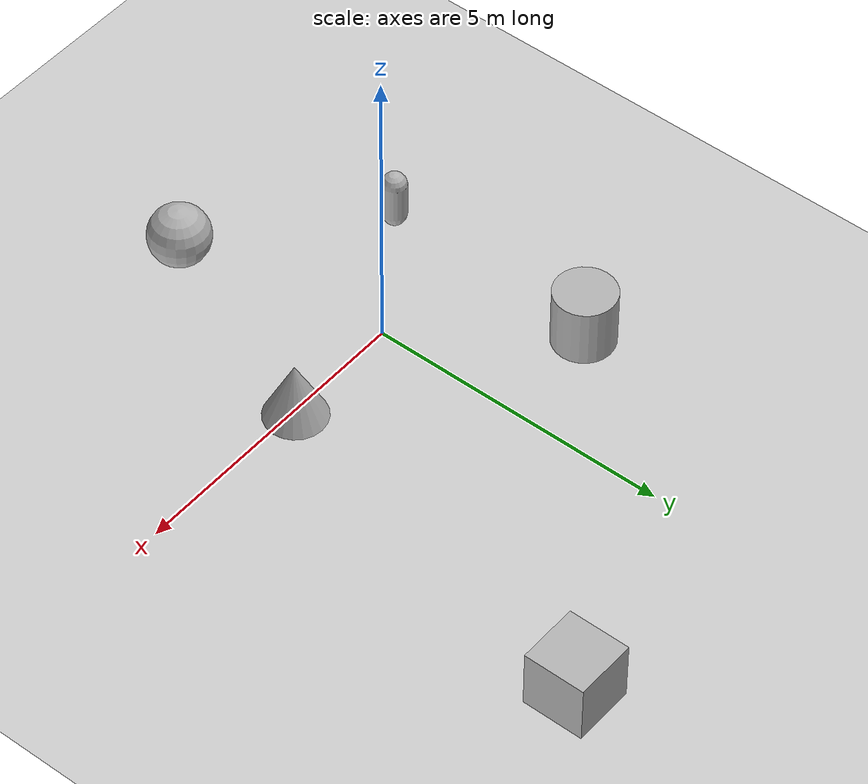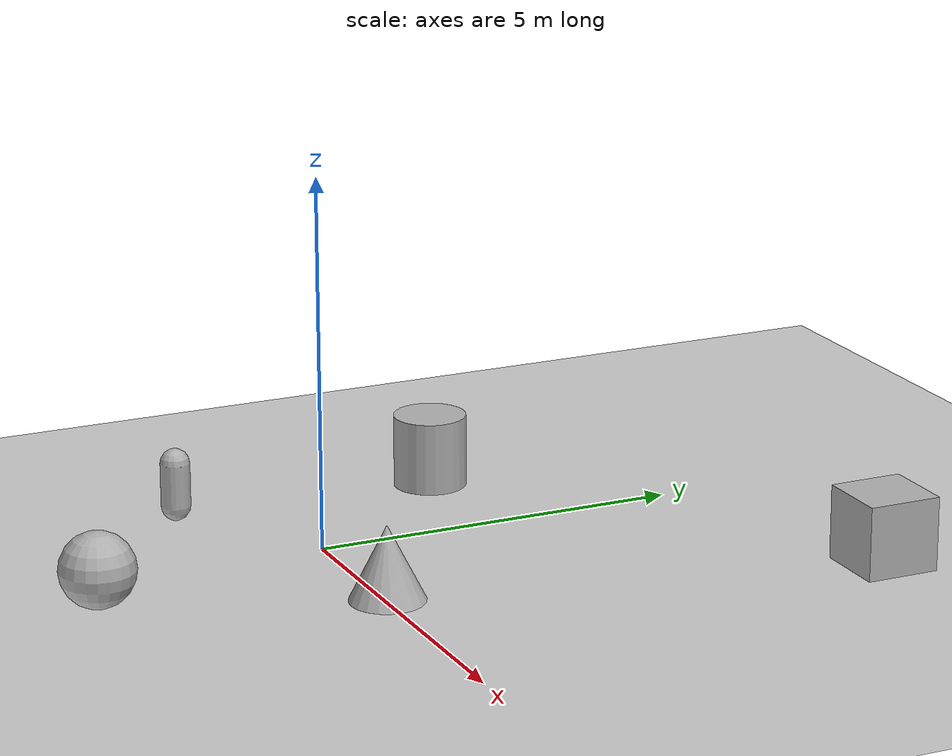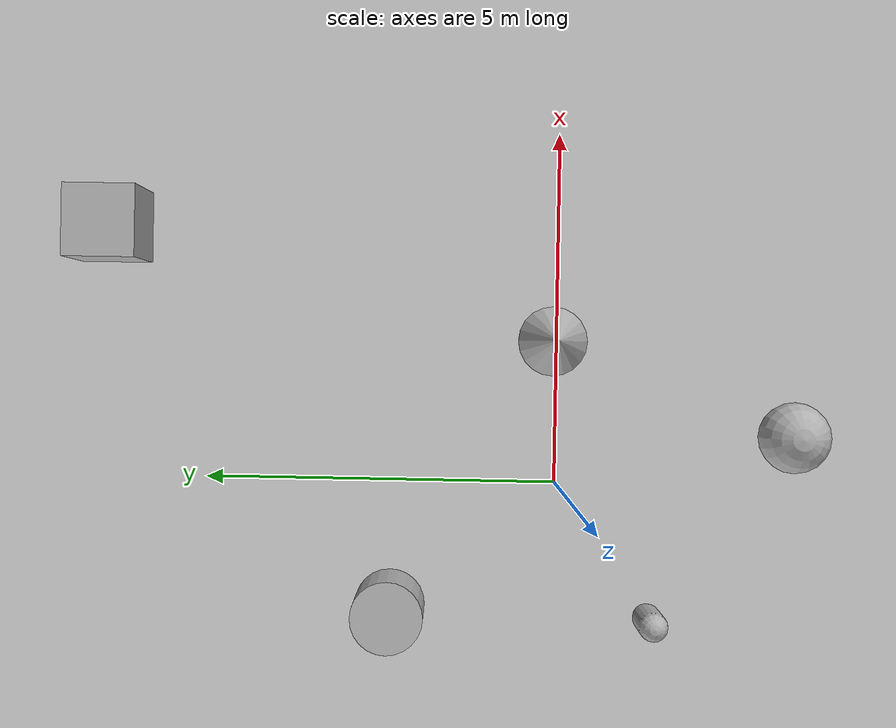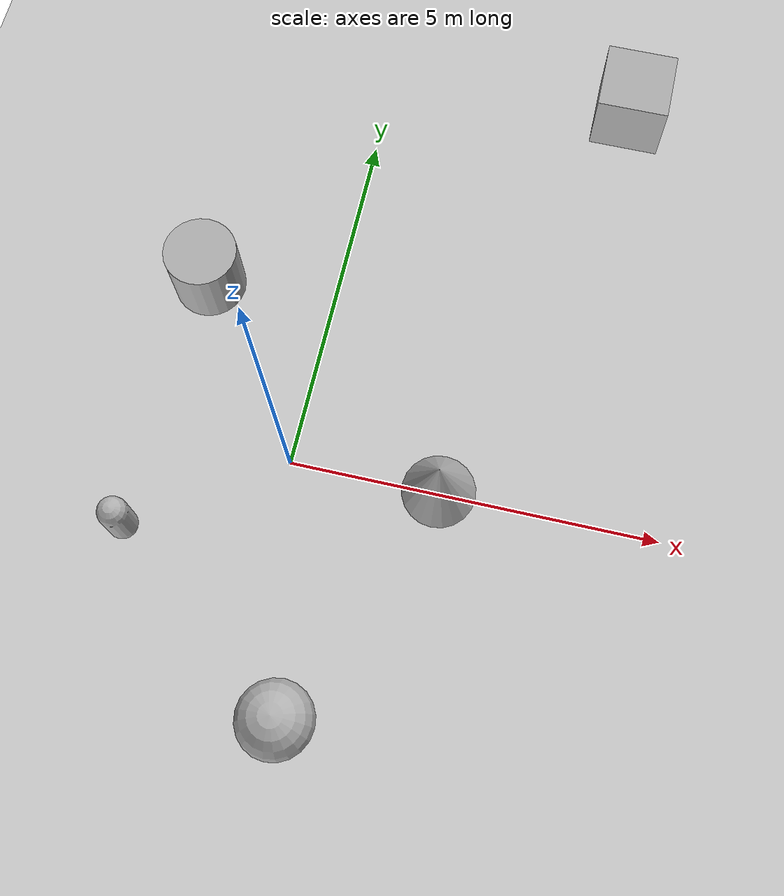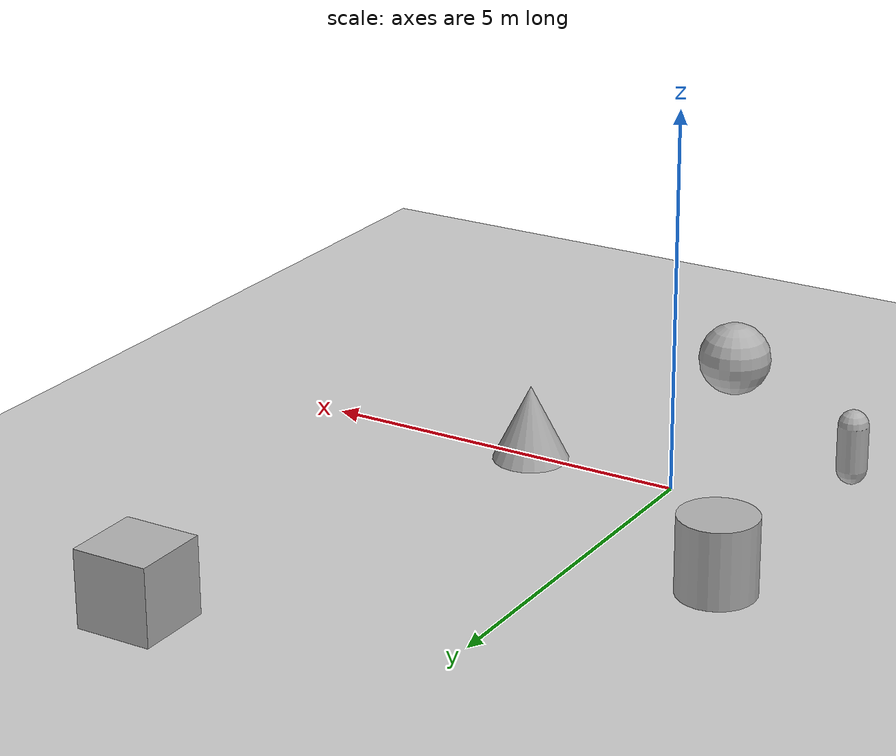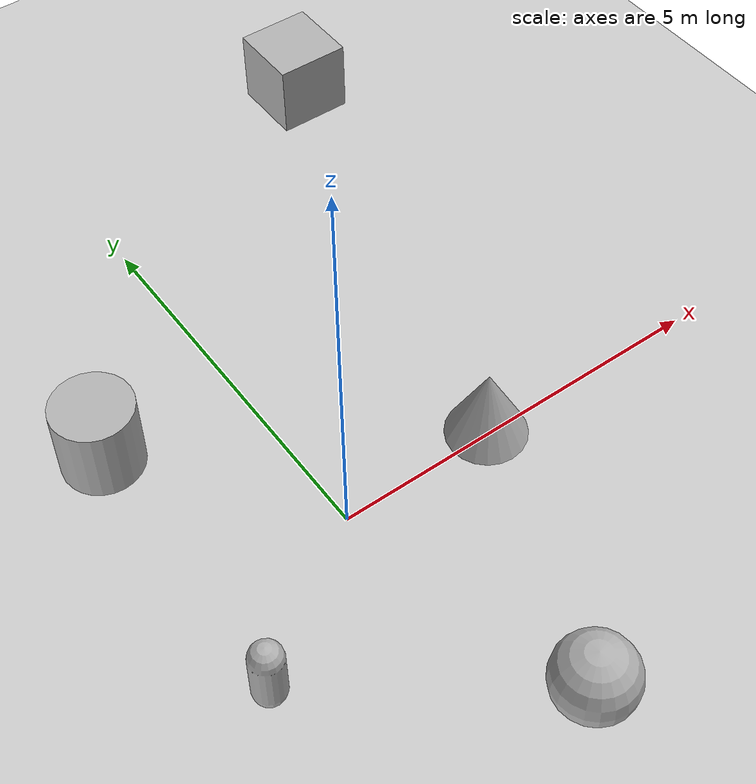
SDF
<sdf version='1.10'>
  <world name='empty'>
    <physics name='1ms' type='ignored'>
      <max_step_size>0.001</max_step_size>
      <real_time_factor>1</real_time_factor>
      <real_time_update_rate>1000</real_time_update_rate>
    </physics>
    <plugin name='gz::sim::systems::Physics' filename='gz-sim-physics-system'/>
    <plugin name='gz::sim::systems::UserCommands' filename='gz-sim-user-commands-system'/>
    <plugin name='gz::sim::systems::SceneBroadcaster' filename='gz-sim-scene-broadcaster-system'/>
    <plugin name='gz::sim::systems::Contact' filename='gz-sim-contact-system'/>
    <gravity>0 0 -9.8000000000000007</gravity>
    <magnetic_field>5.5644999999999998e-06 2.2875799999999999e-05 -4.2388400000000002e-05</magnetic_field>
    <atmosphere type='adiabatic'/>
    <scene>
      <ambient>0.400000006 0.400000006 0.400000006 1</ambient>
      <background>0.699999988 0.699999988 0.699999988 1</background>
      <shadows>true</shadows>
    </scene>
    <model name='ground_plane'>
      <static>true</static>
      <link name='link'>
        <collision name='collision'>
          <geometry>
            <plane>
              <normal>0 0 1</normal>
              <size>100 100</size>
            </plane>
          </geometry>
          <surface>
            <friction>
              <ode/>
            </friction>
            <bounce/>
            <contact/>
          </surface>
        </collision>
        <visual name='visual'>
          <geometry>
            <plane>
              <normal>0 0 1</normal>
              <size>100 100</size>
            </plane>
          </geometry>
          <material>
            <ambient>0.800000012 0.800000012 0.800000012 1</ambient>
            <diffuse>0.800000012 0.800000012 0.800000012 1</diffuse>
            <specular>0.800000012 0.800000012 0.800000012 1</specular>
          </material>
        </visual>
        <pose>0 0 0 0 0 0</pose>
        <inertial>
          <pose>0 0 0 0 0 0</pose>
          <mass>1</mass>
          <inertia>
            <ixx>1</ixx>
            <ixy>0</ixy>
            <ixz>0</ixz>
            <iyy>1</iyy>
            <iyz>0</iyz>
            <izz>1</izz>
          </inertia>
        </inertial>
        <enable_wind>false</enable_wind>
      </link>
      <pose>0 0 0 0 0 0</pose>
      <self_collide>false</self_collide>
    </model>
    <model name='box'>
      <pose>3.5659284803179165 6.3434324295359996 0.49999999990199806 6.2287739151293738e-22 9.3279666454713669e-22 -3.6315533669320137e-22</pose>
      <link name='box_link'>
        <inertial>
          <inertia>
            <ixx>0.16666</ixx>
            <ixy>0</ixy>
            <ixz>0</ixz>
            <iyy>0.16666</iyy>
            <iyz>0</iyz>
            <izz>0.16666</izz>
          </inertia>
          <mass>1</mass>
          <pose>0 0 0 0 0 0</pose>
        </inertial>
        <collision name='box_collision'>
          <geometry>
            <box>
              <size>1 1 1</size>
            </box>
          </geometry>
          <surface>
            <friction>
              <ode/>
            </friction>
            <bounce/>
            <contact/>
          </surface>
        </collision>
        <visual name='box_visual'>
          <geometry>
            <box>
              <size>1 1 1</size>
            </box>
          </geometry>
          <material>
            <ambient>0.300000012 0.300000012 0.300000012 1</ambient>
            <diffuse>0.699999988 0.699999988 0.699999988 1</diffuse>
            <specular>1 1 1 1</specular>
          </material>
        </visual>
        <pose>0 0 0 0 0 0</pose>
        <enable_wind>false</enable_wind>
      </link>
      <static>false</static>
      <self_collide>false</self_collide>
    </model>
    <model name='sphere'>
      <pose>0.72718518636843665 -3.3092808021179825 0.499999999902001 0 0 0</pose>
      <link name='sphere_link'>
        <inertial>
          <inertia>
            <ixx>0.10000000000000001</ixx>
            <ixy>0</ixy>
            <ixz>0</ixz>
            <iyy>0.10000000000000001</iyy>
            <iyz>0</iyz>
            <izz>0.10000000000000001</izz>
          </inertia>
          <mass>1</mass>
          <pose>0 0 0 0 0 0</pose>
        </inertial>
        <collision name='sphere_collision'>
          <geometry>
            <sphere>
              <radius>0.5</radius>
            </sphere>
          </geometry>
          <surface>
            <friction>
              <ode/>
            </friction>
            <bounce/>
            <contact/>
          </surface>
        </collision>
        <visual name='sphere_visual'>
          <geometry>
            <sphere>
              <radius>0.5</radius>
            </sphere>
          </geometry>
          <material>
            <ambient>0.300000012 0.300000012 0.300000012 1</ambient>
            <diffuse>0.699999988 0.699999988 0.699999988 1</diffuse>
            <specular>1 1 1 1</specular>
          </material>
        </visual>
        <pose>0 0 0 0 0 0</pose>
        <enable_wind>false</enable_wind>
      </link>
      <static>false</static>
      <self_collide>false</self_collide>
    </model>
    <model name='cylinder'>
      <pose>-1.7889995467572648 2.3413490768142431 0.49999942638036005 3.8233110674406831e-19 1.782037800581319e-19 -9.0416612472928413e-21</pose>
      <link name='cylinder_link'>
        <inertial>
          <inertia>
            <ixx>0.14580000000000001</ixx>
            <ixy>0</ixy>
            <ixz>0</ixz>
            <iyy>0.14580000000000001</iyy>
            <iyz>0</iyz>
            <izz>0.125</izz>
          </inertia>
          <mass>1</mass>
          <pose>0 0 0 0 0 0</pose>
        </inertial>
        <collision name='cylinder_collision'>
          <geometry>
            <cylinder>
              <radius>0.5</radius>
              <length>1</length>
            </cylinder>
          </geometry>
          <surface>
            <friction>
              <ode/>
            </friction>
            <bounce/>
            <contact/>
          </surface>
        </collision>
        <visual name='cylinder_visual'>
          <geometry>
            <cylinder>
              <radius>0.5</radius>
              <length>1</length>
            </cylinder>
          </geometry>
          <material>
            <ambient>0.300000012 0.300000012 0.300000012 1</ambient>
            <diffuse>0.699999988 0.699999988 0.699999988 1</diffuse>
            <specular>1 1 1 1</specular>
          </material>
        </visual>
        <pose>0 0 0 0 0 0</pose>
        <enable_wind>false</enable_wind>
      </link>
      <static>false</static>
      <self_collide>false</self_collide>
    </model>
    <model name='cone'>
      <pose>2.0269634023502605 0.051222656057265642 0.49999999993296756 5.2541141453390149e-17 -7.7132841038725268e-10 -7.4173097782250489e-23</pose>
      <link name='cone_link'>
        <inertial>
          <inertia>
            <ixx>0.074999999999999997</ixx>
            <ixy>0</ixy>
            <ixz>0</ixz>
            <iyy>0.074999999999999997</iyy>
            <iyz>0</iyz>
            <izz>0.074999999999999997</izz>
          </inertia>
          <mass>1</mass>
          <pose>0 0 0 0 0 0</pose>
        </inertial>
        <collision name='cone_collision'>
          <geometry>
            <cone>
              <radius>0.5</radius>
              <length>1</length>
            </cone>
          </geometry>
          <surface>
            <friction>
              <ode/>
            </friction>
            <bounce/>
            <contact/>
          </surface>
        </collision>
        <visual name='cone_visual'>
          <geometry>
            <cone>
              <radius>0.5</radius>
              <length>1</length>
            </cone>
          </geometry>
          <material>
            <ambient>0.300000012 0.300000012 0.300000012 1</ambient>
            <diffuse>0.699999988 0.699999988 0.699999988 1</diffuse>
            <specular>1 1 1 1</specular>
          </material>
        </visual>
        <pose>0 0 0 0 0 0</pose>
        <enable_wind>false</enable_wind>
      </link>
      <static>false</static>
      <self_collide>false</self_collide>
    </model>
    <model name='capsule'>
      <pose>-1.8868081770175351 -1.3283700383286097 0.499999999902001 0 0 0</pose>
      <link name='capsule_link'>
        <inertial>
          <inertia>
            <ixx>0.074153999999999998</ixx>
            <ixy>0</ixy>
            <ixz>0</ixz>
            <iyy>0.074153999999999998</iyy>
            <iyz>0</iyz>
            <izz>0.018769000000000001</izz>
          </inertia>
          <mass>1</mass>
          <pose>0 0 0 0 0 0</pose>
        </inertial>
        <collision name='capsule_collision'>
          <geometry>
            <capsule>
              <radius>0.20000000000000001</radius>
              <length>0.59999999999999998</length>
            </capsule>
          </geometry>
          <surface>
            <friction>
              <ode/>
            </friction>
            <bounce/>
            <contact/>
          </surface>
        </collision>
        <visual name='capsule_visual'>
          <geometry>
            <capsule>
              <radius>0.20000000000000001</radius>
              <length>0.59999999999999998</length>
            </capsule>
          </geometry>
          <material>
            <ambient>0.300000012 0.300000012 0.300000012 1</ambient>
            <diffuse>0.699999988 0.699999988 0.699999988 1</diffuse>
            <specular>1 1 1 1</specular>
          </material>
        </visual>
        <pose>0 0 0 0 0 0</pose>
        <enable_wind>false</enable_wind>
      </link>
      <static>false</static>
      <self_collide>false</self_collide>
    </model>
    <light name='sun' type='directional'>
      <pose>0 0 10 0 0 0</pose>
      <cast_shadows>true</cast_shadows>
      <intensity>1</intensity>
      <direction>-0.5 0.10000000000000001 -0.90000000000000002</direction>
      <diffuse>0.800000012 0.800000012 0.800000012 1</diffuse>
      <specular>0.200000003 0.200000003 0.200000003 1</specular>
      <attenuation>
        <range>1000</range>
        <linear>0.01</linear>
        <constant>0.90000000000000002</constant>
        <quadratic>0.001</quadratic>
      </attenuation>
      <spot>
        <inner_angle>0</inner_angle>
        <outer_angle>0</outer_angle>
        <falloff>0</falloff>
      </spot>
    </light>
  </world>
</sdf>
